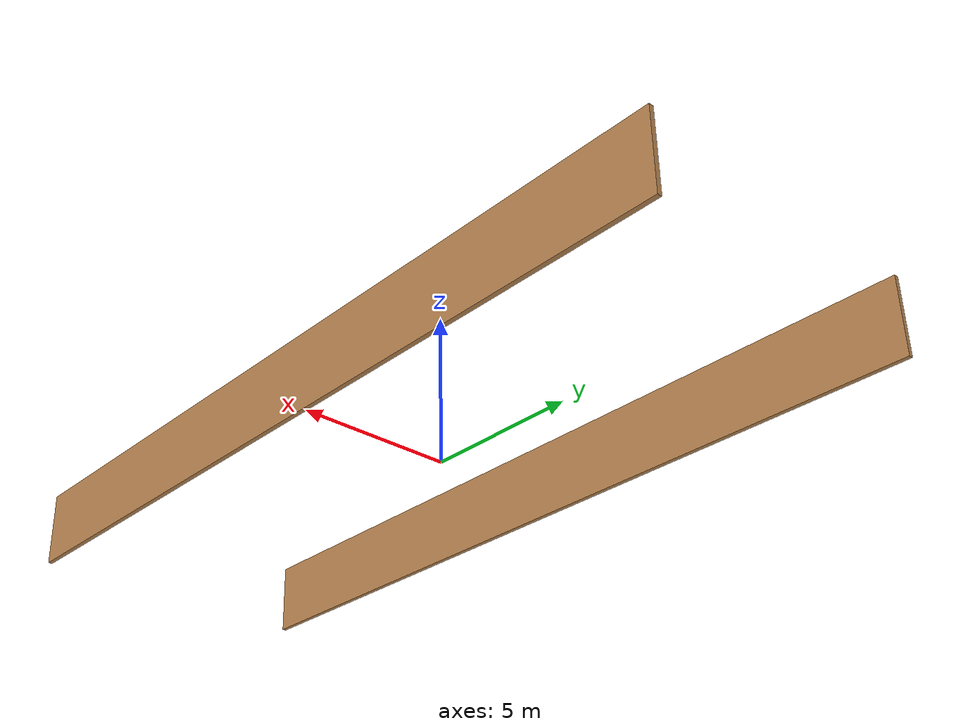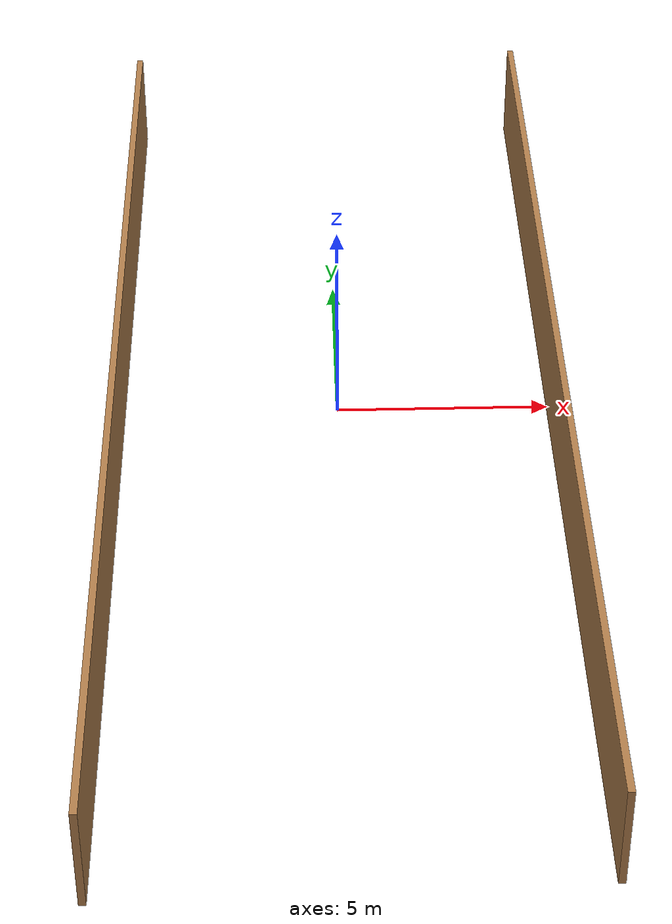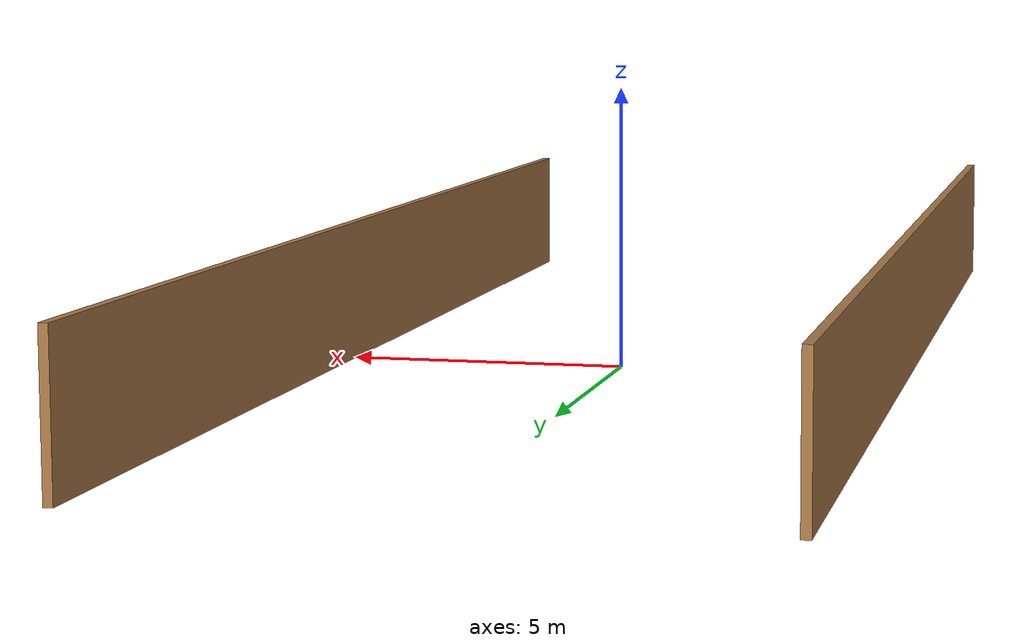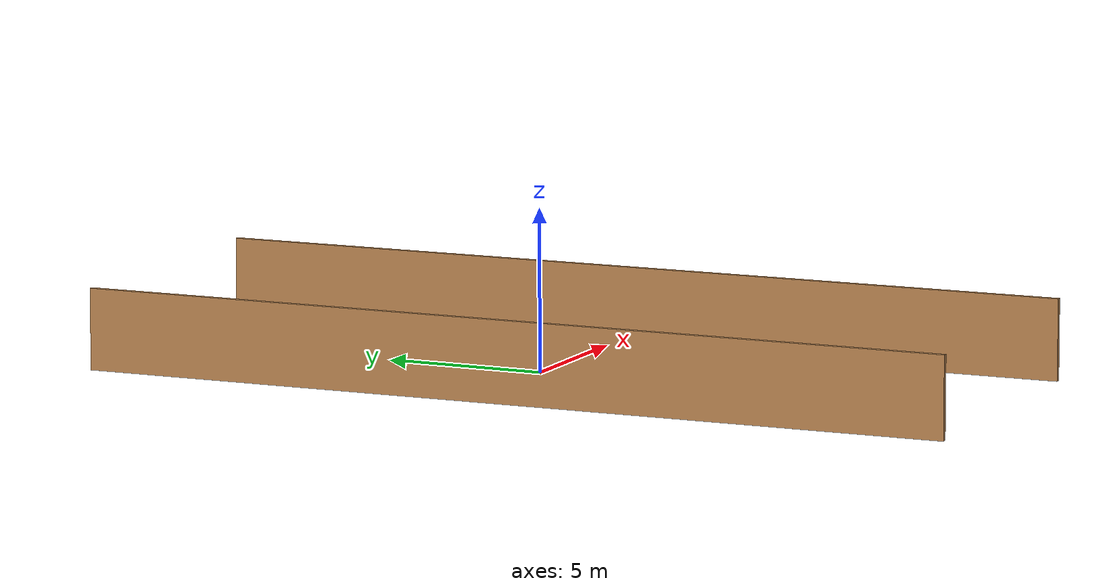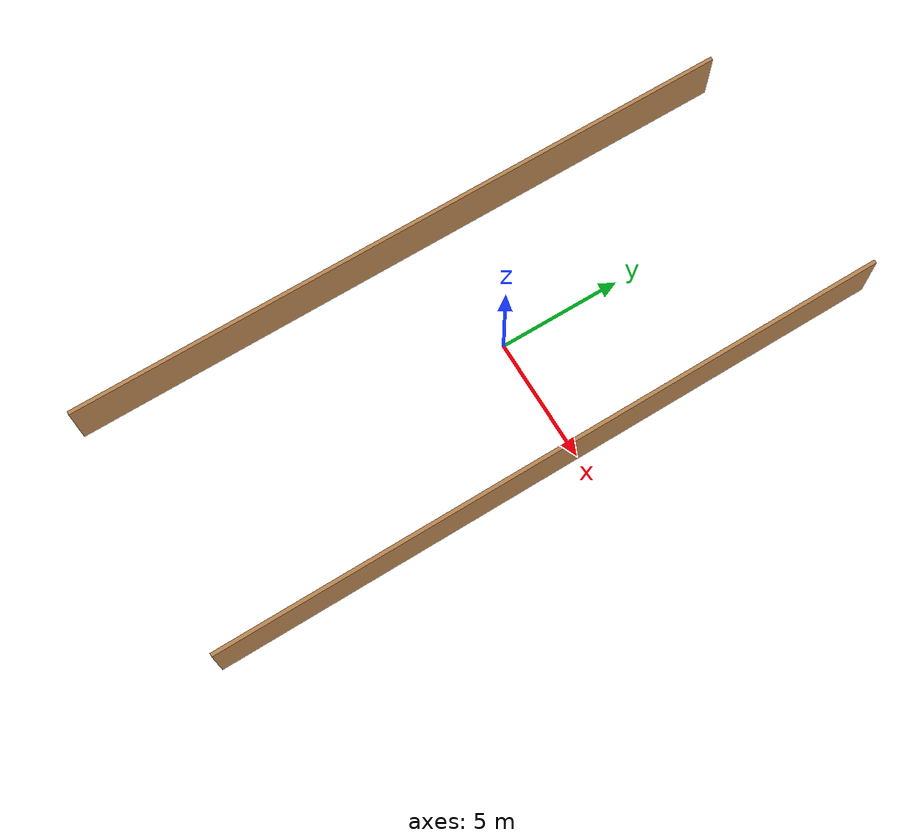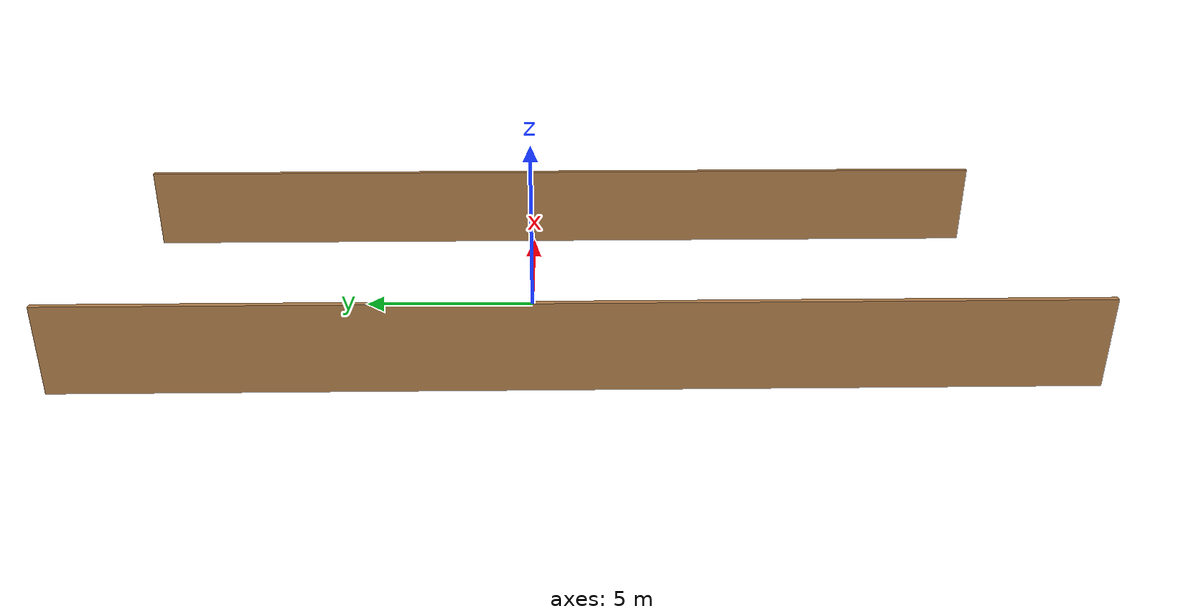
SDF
<?xml version='1.0'?>
<sdf version='1.6'>
  <model name='simple_corridor'>
    <pose frame=''>-0.026 -1.095 0 0 -0 0</pose>
    <link name='Wall_4'>
      <collision name='Wall_4_Collision'>
        <geometry>
          <box>
            <size>27.5 0.15 2.5</size>
          </box>
        </geometry>
        <pose frame=''>0 0 1.25 0 -0 0</pose>
      </collision>
      <visual name='Wall_4_Visual'>
        <pose frame=''>0 0 1.25 0 -0 0</pose>
        <geometry>
          <box>
            <size>27.5 0.15 2.5</size>
          </box>
        </geometry>
        <material>
          <script>
            <uri>file://media/materials/scripts/gazebo.material</uri>
            <name>Gazebo/Wood</name>
          </script>
          <ambient>1 1 1 1</ambient>
        </material>
        <meta>
          <layer>0</layer>
        </meta>
      </visual>
      <pose frame=''>-5.078 -0.137 0 0 -0 -1.5708</pose>
    </link>
    <link name='Wall_6'>
      <collision name='Wall_6_Collision'>
        <geometry>
          <box>
            <size>27.5 0.15 2.5</size>
          </box>
        </geometry>
        <pose frame=''>0 0 1.25 0 -0 0</pose>
      </collision>
      <visual name='Wall_6_Visual'>
        <pose frame=''>0 0 1.25 0 -0 0</pose>
        <geometry>
          <box>
            <size>27.5 0.15 2.5</size>
          </box>
        </geometry>
        <material>
          <script>
            <uri>file://media/materials/scripts/gazebo.material</uri>
            <name>Gazebo/Wood</name>
          </script>
          <ambient>1 1 1 1</ambient>
        </material>
        <meta>
          <layer>0</layer>
        </meta>
      </visual>
      <pose frame=''>5.078 0.137 0 0 -0 -1.5708</pose>
    </link>
    <static>1</static>
  </model>
</sdf>
